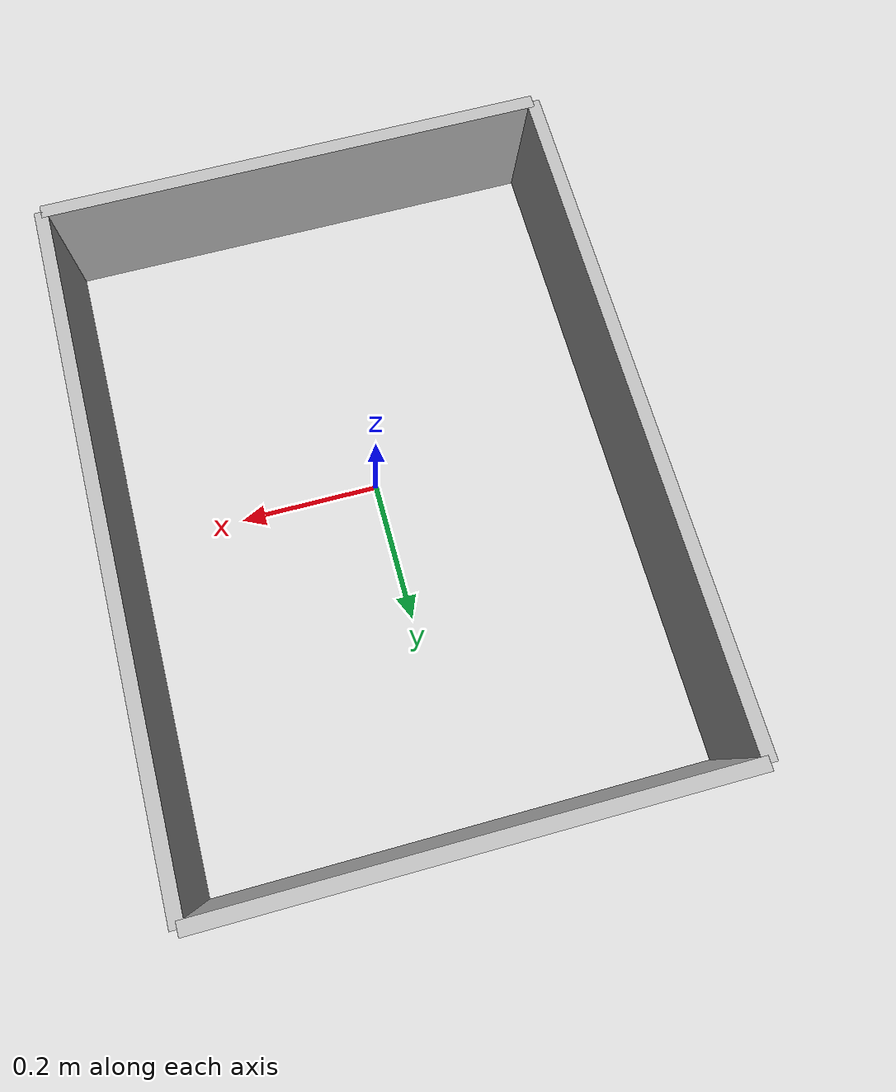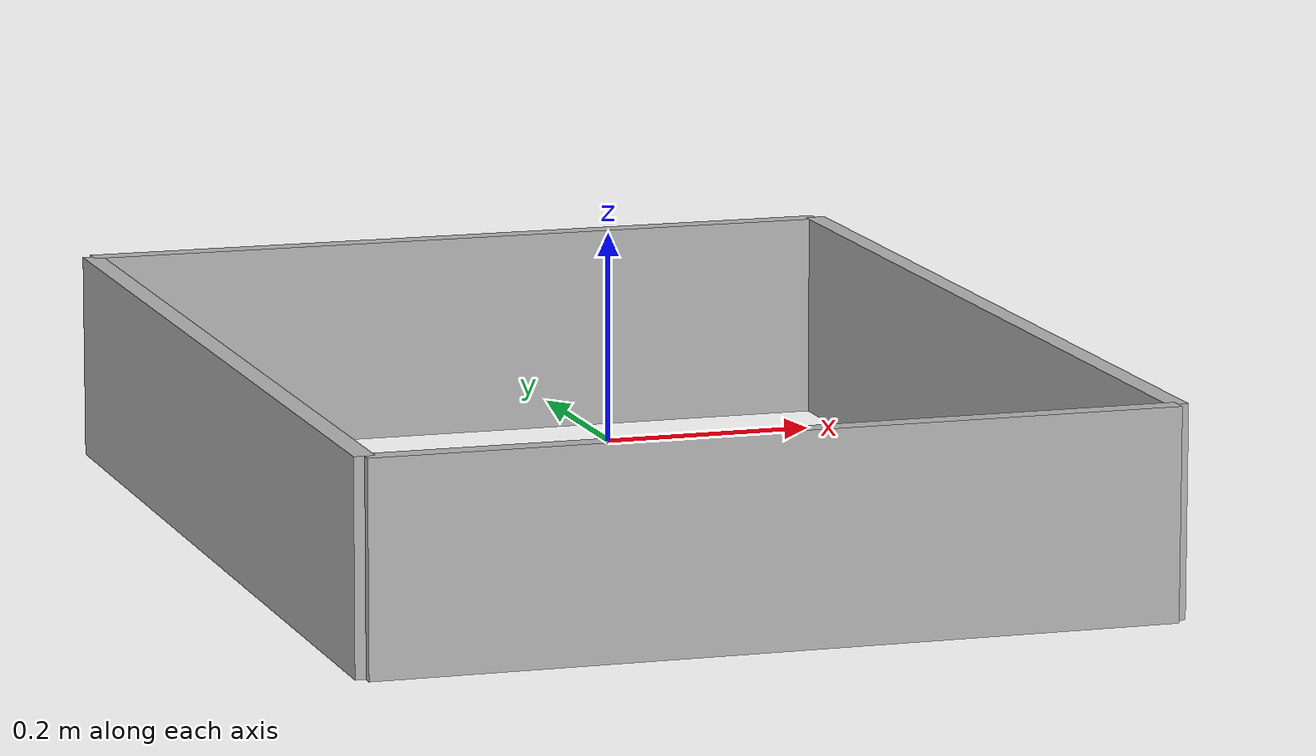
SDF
<?xml version="1.0" ?>
<sdf version="1.5">
<model name="table_arena">
    <static>true</static>
    <link name="north_wall">
      <pose>0 0.505 0.01 0 0 0</pose>
      <visual name="visual">
        <cast_shadows>0</cast_shadows>
        <geometry>
          <box>
          <size>0.76 0.02 0.2</size>
          </box>
        </geometry>
      </visual>
      <collision name="collision">
        <geometry>
          <box>
          <size>0.76 0.02 0.2</size>
          </box>
        </geometry>
      </collision>
    </link>
    <link name="south_wall">
      <pose>0 -0.505 0.01 0 0 0</pose>
      <visual name="visual">
        <cast_shadows>0</cast_shadows>
        <geometry>
          <box>
          <size>0.76 0.02 0.2</size>
          </box>
        </geometry>
      </visual>
      <collision name="collision">
        <geometry>
          <box>
          <size>0.76 0.02 0.2</size>
          </box>
        </geometry>
      </collision>
    </link>
    <link name="east_wall">
      <pose>0.38 0 0.01 0 0 0</pose>
      <visual name="visual">
        <cast_shadows>0</cast_shadows>
        <geometry>
          <box>
          <size>0.02 1.01 0.2</size>
          </box>
        </geometry>
      </visual>
      <collision name="collision">
        <geometry>
          <box>
          <size>0.02 1.01 0.2</size>
          </box>
        </geometry>
      </collision>
    </link>
    <link name="west_wall">
      <pose>-0.38 0 0.01 0 0 0</pose>
      <visual name="visual">
        <cast_shadows>0</cast_shadows>
        <geometry>
          <box>
          <size>0.02 1.01 0.2</size>
          </box>
        </geometry>
      </visual>
      <collision name="collision">
        <geometry>
          <box>
          <size>0.02 1.01 0.2</size>
          </box>
        </geometry>
      </collision>
    </link>
  </model>
</sdf>
